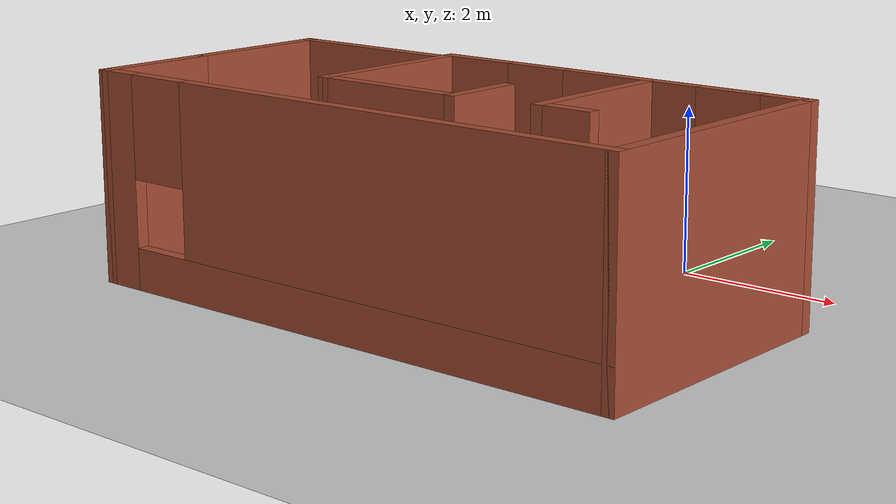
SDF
<sdf version="1.7">
 <world name="default">
  <light name="sun" type="directional">
   <pose>0 0 10 0 -0 0</pose>
   <diffuse>0.8 0.8 0.8 1</diffuse>
   <specular>0.2 0.2 0.2 1</specular>
   <attenuation>
    <range>1000</range>
    <constant>0.9</constant>
    <linear>0.01</linear>
    <quadratic>0.001</quadratic>
   </attenuation>
   <direction>-0.5 0.1 -0.9</direction>
   <spot><inner_angle>0</inner_angle><outer_angle>0</outer_angle><falloff>0</falloff></spot>
  </light>
  <model name="ground_plane">
   <static>1</static>
   <link name="link">
    <collision name="collision">
     <geometry><plane><normal>0 0 1</normal><size>100 100</size></plane></geometry>
     <surface>
      <contact><collide_bitmask>65535</collide_bitmask></contact>
      <friction><ode><mu>100</mu><mu2>50</mu2></ode></friction>
     </surface>
    </collision>
    <visual name="visual">
     <cast_shadows>0</cast_shadows>
     <geometry><plane><normal>0 0 1</normal><size>100 100</size></plane></geometry>
     <material>
      <script><uri>file://media/materials/scripts/gazebo.material</uri><name>Gazebo/Grey</name></script>
     </material>
    </visual>
   </link>
  </model>
  <gravity>0 0 -9.8</gravity>
  <magnetic_field>6e-06 2.3e-05 -4.2e-05</magnetic_field>
  <atmosphere type="adiabatic"/>
  <physics type="ode">
   <max_step_size>0.001</max_step_size>
   <real_time_factor>1</real_time_factor>
   <real_time_update_rate>1000</real_time_update_rate>
  </physics>
  <scene><ambient>0.4 0.4 0.4 1</ambient><background>0.7 0.7 0.7 1</background><shadows>1</shadows></scene>
  <spherical_coordinates>
   <surface_model>EARTH_WGS84</surface_model>
   <latitude_deg>0</latitude_deg>
   <longitude_deg>0</longitude_deg>
   <elevation>0</elevation>
   <heading_deg>0</heading_deg>
  </spherical_coordinates>
  <model name="First">
   <pose>-1.29 -2.3225 0 0 -0 0</pose>
   <link name="Wall_0">
    <collision name="Wall_0_Collision">
     <geometry><box><size>2 0.15 2.5</size></box></geometry>
     <pose>0 0 1.25 0 -0 0</pose>
    </collision>
    <visual name="Wall_0_Visual">
     <pose>0 0 1.25 0 -0 0</pose>
     <geometry><box><size>2 0.15 2.5</size></box></geometry>
     <material>
      <script><uri>file://media/materials/scripts/gazebo.material</uri><name>Gazebo/Bricks</name></script>
      <ambient>1 1 1 1</ambient>
     </material>
     <meta><layer>0</layer></meta>
    </visual>
    <pose>-3.55 0.0275 0 0 -0 -1.5708</pose>
   </link>
   <link name="Wall_1">
    <collision name="Wall_1_Collision">
     <geometry><box><size>1.5 0.15 2.5</size></box></geometry>
     <pose>0 0 1.25 0 -0 0</pose>
    </collision>
    <visual name="Wall_1_Visual">
     <pose>0 0 1.25 0 -0 0</pose>
     <geometry><box><size>1.5 0.15 2.5</size></box></geometry>
     <material>
      <script><uri>file://media/materials/scripts/gazebo.material</uri><name>Gazebo/Bricks</name></script>
      <ambient>1 1 1 1</ambient>
     </material>
     <meta><layer>0</layer></meta>
    </visual>
    <pose>-3.55 -1.5725 0 0 -0 -1.5708</pose>
   </link>
   <link name="Wall_10">
    <collision name="Wall_10_Collision">
     <geometry><box><size>0.75 0.15 2.5</size></box></geometry>
     <pose>0 0 1.25 0 -0 0</pose>
    </collision>
    <visual name="Wall_10_Visual">
     <pose>0 0 1.25 0 -0 0</pose>
     <geometry><box><size>0.75 0.15 2.5</size></box></geometry>
     <material>
      <script><uri>file://media/materials/scripts/gazebo.material</uri><name>Gazebo/Bricks</name></script>
      <ambient>1 1 1 1</ambient>
     </material>
     <meta><layer>0</layer></meta>
    </visual>
    <pose>1.88 -0.8375 0 0 -0 0</pose>
   </link>
   <link name="Wall_2">
    <pose>0 -2.2475 0 0 -0 0</pose>
    <visual name="Wall_2_Visual_0">
     <pose>-3.3425 0 1.25 0 -0 0</pose>
     <geometry><box><size>0.565 0.15 2.5</size></box></geometry>
     <material>
      <script><uri>file://media/materials/scripts/gazebo.material</uri><name>Gazebo/Bricks</name></script>
      <ambient>1 1 1 1</ambient>
     </material>
     <meta><layer>0</layer></meta>
    </visual>
    <collision name="Wall_2_Collision_0">
     <geometry><box><size>0.565 0.15 2.5</size></box></geometry>
     <pose>-3.3425 0 1.25 0 -0 0</pose>
    </collision>
    <visual name="Wall_2_Visual_1">
     <pose>0.2825 0 0.25 0 -0 0</pose>
     <geometry><box><size>6.685 0.15 0.5</size></box></geometry>
     <material>
      <script><uri>file://media/materials/scripts/gazebo.material</uri><name>Gazebo/Bricks</name></script>
      <ambient>1 1 1 1</ambient>
     </material>
     <meta><layer>0</layer></meta>
    </visual>
    <collision name="Wall_2_Collision_1">
     <geometry><box><size>6.685 0.15 0.5</size></box></geometry>
     <pose>0.2825 0 0.25 0 -0 0</pose>
    </collision>
    <visual name="Wall_2_Visual_2">
     <pose>0.6825 0 1.5 0 -0 0</pose>
     <geometry><box><size>5.885 0.15 2</size></box></geometry>
     <material>
      <script><uri>file://media/materials/scripts/gazebo.material</uri><name>Gazebo/Bricks</name></script>
      <ambient>1 1 1 1</ambient>
     </material>
     <meta><layer>0</layer></meta>
    </visual>
    <collision name="Wall_2_Collision_2">
     <geometry><box><size>5.885 0.15 2</size></box></geometry>
     <pose>0.6825 0 1.5 0 -0 0</pose>
    </collision>
    <visual name="Wall_2_Visual_3">
     <pose>-2.66 0 1.9 0 -0 0</pose>
     <geometry><box><size>0.8 0.15 1.2</size></box></geometry>
     <material>
      <script><uri>file://media/materials/scripts/gazebo.material</uri><name>Gazebo/Bricks</name></script>
      <ambient>1 1 1 1</ambient>
     </material>
     <meta><layer>0</layer></meta>
    </visual>
    <collision name="Wall_2_Collision_3">
     <geometry><box><size>0.8 0.15 1.2</size></box></geometry>
     <pose>-2.66 0 1.9 0 -0 0</pose>
    </collision>
   </link>
   <link name="Wall_20">
    <collision name="Wall_20_Collision">
     <geometry><box><size>2.25 0.15 2.5</size></box></geometry>
     <pose>0 0 1.25 0 -0 0</pose>
    </collision>
    <visual name="Wall_20_Visual">
     <pose>0 0 1.25 0 -0 0</pose>
     <geometry><box><size>2.25 0.15 2.5</size></box></geometry>
     <material>
      <script><uri>file://media/materials/scripts/gazebo.material</uri><name>Gazebo/Bricks</name></script>
      <ambient>1 1 1 1</ambient>
     </material>
     <meta><layer>0</layer></meta>
    </visual>
    <pose>-2.5 0.9525 0 0 -0 0</pose>
   </link>
   <link name="Wall_3">
    <collision name="Wall_3_Collision">
     <geometry><box><size>3.5 0.15 2.5</size></box></geometry>
     <pose>0 0 1.25 0 -0 0</pose>
    </collision>
    <visual name="Wall_3_Visual">
     <pose>0 0 1.25 0 -0 0</pose>
     <geometry><box><size>3.5 0.15 2.5</size></box></geometry>
     <material>
      <script><uri>file://media/materials/scripts/gazebo.material</uri><name>Gazebo/Bricks</name></script>
      <ambient>1 1 1 1</ambient>
     </material>
     <meta><layer>0</layer></meta>
    </visual>
    <pose>3.55 -0.5725 0 0 -0 1.5708</pose>
   </link>
   <link name="Wall_4">
    <pose>1.125 1.1025 0 0 -0 3.14159</pose>
    <visual name="Wall_4_Visual_0">
     <pose>-2.1975 0 1.25 0 -0 0</pose>
     <geometry><box><size>0.605 0.15 2.5</size></box></geometry>
     <material>
      <script><uri>file://media/materials/scripts/gazebo.material</uri><name>Gazebo/Bricks</name></script>
      <ambient>1 1 1 1</ambient>
     </material>
     <meta><layer>0</layer></meta>
    </visual>
    <collision name="Wall_4_Collision_0">
     <geometry><box><size>0.605 0.15 2.5</size></box></geometry>
     <pose>-2.1975 0 1.25 0 -0 0</pose>
    </collision>
    <visual name="Wall_4_Visual_1">
     <pose>0.3025 0 0.25 0 -0 0</pose>
     <geometry><box><size>4.395 0.15 0.5</size></box></geometry>
     <material>
      <script><uri>file://media/materials/scripts/gazebo.material</uri><name>Gazebo/Bricks</name></script>
      <ambient>1 1 1 1</ambient>
     </material>
     <meta><layer>0</layer></meta>
    </visual>
    <collision name="Wall_4_Collision_1">
     <geometry><box><size>4.395 0.15 0.5</size></box></geometry>
     <pose>0.3025 0 0.25 0 -0 0</pose>
    </collision>
    <visual name="Wall_4_Visual_2">
     <pose>-0.2 0 1.5 0 -0 0</pose>
     <geometry><box><size>1.79 0.15 2</size></box></geometry>
     <material>
      <script><uri>file://media/materials/scripts/gazebo.material</uri><name>Gazebo/Bricks</name></script>
      <ambient>1 1 1 1</ambient>
     </material>
     <meta><layer>0</layer></meta>
    </visual>
    <collision name="Wall_4_Collision_2">
     <geometry><box><size>1.79 0.15 2</size></box></geometry>
     <pose>-0.2 0 1.5 0 -0 0</pose>
    </collision>
    <visual name="Wall_4_Visual_3">
     <pose>1.9975 0 1.5 0 -0 0</pose>
     <geometry><box><size>1.005 0.15 2</size></box></geometry>
     <material>
      <script><uri>file://media/materials/scripts/gazebo.material</uri><name>Gazebo/Bricks</name></script>
      <ambient>1 1 1 1</ambient>
     </material>
     <meta><layer>0</layer></meta>
    </visual>
    <collision name="Wall_4_Collision_3">
     <geometry><box><size>1.005 0.15 2</size></box></geometry>
     <pose>1.9975 0 1.5 0 -0 0</pose>
    </collision>
    <visual name="Wall_4_Visual_4">
     <pose>-1.495 0 1.9 0 -0 0</pose>
     <geometry><box><size>0.8 0.15 1.2</size></box></geometry>
     <material>
      <script><uri>file://media/materials/scripts/gazebo.material</uri><name>Gazebo/Bricks</name></script>
      <ambient>1 1 1 1</ambient>
     </material>
     <meta><layer>0</layer></meta>
    </visual>
    <collision name="Wall_4_Collision_4">
     <geometry><box><size>0.8 0.15 1.2</size></box></geometry>
     <pose>-1.495 0 1.9 0 -0 0</pose>
    </collision>
    <visual name="Wall_4_Visual_5">
     <pose>1.095 0 1.9 0 -0 0</pose>
     <geometry><box><size>0.8 0.15 1.2</size></box></geometry>
     <material>
      <script><uri>file://media/materials/scripts/gazebo.material</uri><name>Gazebo/Bricks</name></script>
      <ambient>1 1 1 1</ambient>
     </material>
     <meta><layer>0</layer></meta>
    </visual>
    <collision name="Wall_4_Collision_5">
     <geometry><box><size>0.8 0.15 1.2</size></box></geometry>
     <pose>1.095 0 1.9 0 -0 0</pose>
    </collision>
   </link>
   <link name="Wall_5">
    <collision name="Wall_5_Collision">
     <geometry><box><size>2.25 0.15 2.5</size></box></geometry>
     <pose>0 0 1.25 0 -0 0</pose>
    </collision>
    <visual name="Wall_5_Visual">
     <pose>0 0 1.25 0 -0 0</pose>
     <geometry><box><size>2.25 0.15 2.5</size></box></geometry>
     <material>
      <script><uri>file://media/materials/scripts/gazebo.material</uri><name>Gazebo/Bricks</name></script>
      <ambient>1 1 1 1</ambient>
     </material>
     <meta><layer>0</layer></meta>
    </visual>
    <pose>-1.3 0.0525 0 0 -0 -1.5708</pose>
   </link>
   <link name="Wall_6">
    <collision name="Wall_6_Collision">
     <geometry><box><size>2 0.15 2.5</size></box></geometry>
     <pose>0 0 1.25 0 -0 0</pose>
    </collision>
    <visual name="Wall_6_Visual">
     <pose>0 0 1.25 0 -0 0</pose>
     <geometry><box><size>2 0.15 2.5</size></box></geometry>
     <material>
      <script><uri>file://media/materials/scripts/gazebo.material</uri><name>Gazebo/Bricks</name></script>
      <ambient>1 1 1 1</ambient>
     </material>
     <meta><layer>0</layer></meta>
    </visual>
    <pose>-0.375 -0.9975 0 0 -0 0</pose>
   </link>
   <link name="Wall_7">
    <collision name="Wall_7_Collision">
     <geometry><box><size>1 0.15 2.5</size></box></geometry>
     <pose>0 0 1.25 0 -0 0</pose>
    </collision>
    <visual name="Wall_7_Visual">
     <pose>0 0 1.25 0 -0 0</pose>
     <geometry><box><size>1 0.15 2.5</size></box></geometry>
     <material>
      <script><uri>file://media/materials/scripts/gazebo.material</uri><name>Gazebo/Bricks</name></script>
      <ambient>1 1 1 1</ambient>
     </material>
     <meta><layer>0</layer></meta>
    </visual>
    <pose>0.55 -0.5725 0 0 -0 1.5708</pose>
   </link>
   <link name="Wall_9">
    <collision name="Wall_9_Collision">
     <geometry><box><size>2 0.15 2.5</size></box></geometry>
     <pose>0 0 1.25 0 -0 0</pose>
    </collision>
    <visual name="Wall_9_Visual">
     <pose>0 0 1.25 0 -0 0</pose>
     <geometry><box><size>2 0.15 2.5</size></box></geometry>
     <material>
      <script><uri>file://media/materials/scripts/gazebo.material</uri><name>Gazebo/Bricks</name></script>
      <ambient>1 1 1 1</ambient>
     </material>
     <meta><layer>0</layer></meta>
    </visual>
    <pose>1.58 0.0875 0 0 -0 -1.5708</pose>
   </link>
   <static>1</static>
  </model>
 </world>
</sdf>
